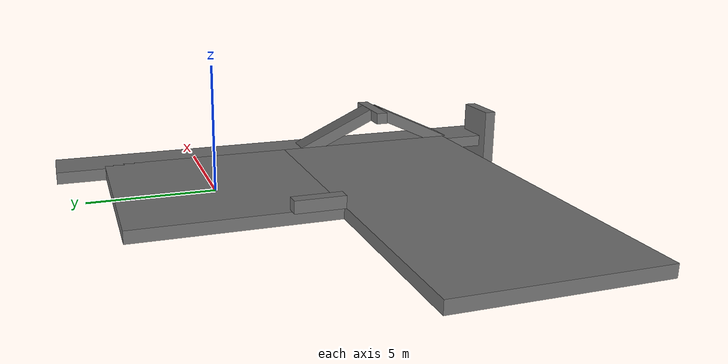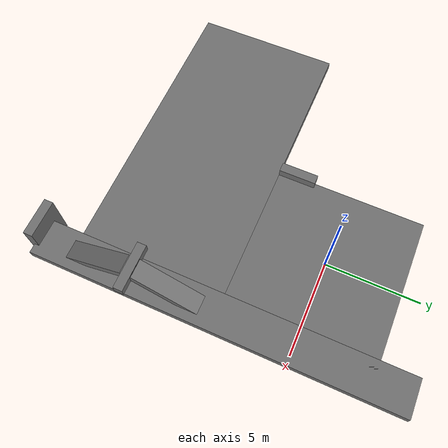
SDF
<sdf version="1.10">
 <world name="simple_test">
  <physics name="ode_cpu" type="ode">
   <max_step_size>0.002</max_step_size>
   <real_time_update_rate>500</real_time_update_rate>
   <real_time_factor>1.0</real_time_factor>
   <ode>
    <solver><type>quick</type><iters>50</iters><sor>1.3</sor></solver>
    <constraints><cfm>0.0</cfm><erp>0.2</erp></constraints>
   </ode>
  </physics>
  <plugin name="gz::sim::systems::Physics" filename="gz-sim-physics-system"/>
  <plugin name="gz::sim::systems::UserCommands" filename="gz-sim-user-commands-system"/>
  <plugin name="gz::sim::systems::SceneBroadcaster" filename="gz-sim-scene-broadcaster-system"/>
  <plugin name="gz::sim::systems::Contact" filename="gz-sim-contact-system"/>
  <gravity>0 0 -9.81</gravity>
  <magnetic_field>5.5644999999999998e-06 2.2875799999999999e-05 -4.2388400000000002e-05</magnetic_field>
  <atmosphere type="adiabatic"/>
  <scene><ambient>0.5 0.5 0.5 1</ambient><background>0.7 0.7 0.75 1</background><shadows>true</shadows></scene>
  <model name="platform">
   <static>true</static>
   <link name="link_platform">
    <collision name="col"><geometry><box><size>8 8 .5</size></box></geometry></collision>
    <visual name="vis">
     <geometry><box><size>8 8 .5</size></box></geometry>
     <material>
      <ambient>0.35 0.35 0.35 1</ambient>
      <diffuse>0.45 0.45 0.45 1</diffuse>
      <pbr>
       <metal>
        <albedo_map>model://textures/wood_textures/wood_texture_seamless_1x5.jpg</albedo_map>
        <roughness>0.9</roughness>
        <metalness>0.0</metalness>
       </metal>
      </pbr>
     </material>
    </visual>
   </link>
  </model>
  <model name="driving platform">
   <static>true</static>
   <link name="link_base_driving_platform">
    <pose>-4 -8 0 0 0 0</pose>
    <collision name="col"><geometry><box><size>16 8 .5</size></box></geometry></collision>
    <visual name="vis">
     <geometry><box><size>16 8 .5</size></box></geometry>
     <material>
      <ambient>0.35 0.35 0.35 1</ambient>
      <diffuse>0.45 0.45 0.45 1</diffuse>
      <pbr>
       <metal>
        <albedo_map>model://textures/wood_textures/wood_texture_seamless_1x5.jpg</albedo_map>
        <roughness>0.9</roughness>
        <metalness>0.0</metalness>
       </metal>
      </pbr>
     </material>
    </visual>
   </link>
   <link name="link_driving_marker">
    <pose>-4 -3 .5 0 0 0</pose>
    <collision name="col"><geometry><box><size>.5 2 .5</size></box></geometry></collision>
    <visual name="vis">
     <geometry><box><size>.5 2 .5</size></box></geometry>
     <material>
      <ambient>0.35 0.35 0.35 1</ambient>
      <diffuse>0.45 0.45 0.45 1</diffuse>
      <pbr>
       <metal>
        <albedo_map>model://textures/stone_textures/stone_wall_seamless_2x1.jpg</albedo_map>
        <roughness>0.9</roughness>
        <metalness>0.0</metalness>
       </metal>
      </pbr>
     </material>
    </visual>
   </link>
  </model>
  <model name="roll_ramp">
   <static>true</static>
   <link name="link_up_ramp">
    <pose>4.5 -6.5 .75 -0.436 0 0</pose>
    <collision name="col"><geometry><box><size>1 4 .5</size></box></geometry></collision>
    <visual name="vis">
     <geometry><box><size>1 4 .5</size></box></geometry>
     <material>
      <ambient>0.35 0.35 0.35 1</ambient>
      <diffuse>0.45 0.45 0.45 1</diffuse>
      <pbr>
       <metal>
        <albedo_map>model://textures/stone_textures/stone_wall_seamless_2x1.jpg</albedo_map>
        <roughness>0.9</roughness>
        <metalness>0.0</metalness>
       </metal>
      </pbr>
     </material>
    </visual>
   </link>
   <link name="link_wait_platform">
    <pose>4.5 -8.5 1.55 0 0 0</pose>
    <collision name="col"><geometry><box><size>3 .5 .5</size></box></geometry></collision>
    <visual name="vis">
     <geometry><box><size>2.5 .5 .5</size></box></geometry>
     <material>
      <ambient>0.35 0.35 0.35 1</ambient>
      <diffuse>0.45 0.45 0.45 1</diffuse>
      <pbr>
       <metal>
        <albedo_map>model://textures/wood_textures/wood_texture_seamless_1x5.jpg</albedo_map>
        <roughness>0.9</roughness>
        <metalness>0.0</metalness>
       </metal>
      </pbr>
     </material>
    </visual>
   </link>
   <link name="link_down_ramp">
    <pose>4.5 -10.5 .75 -0.436 0 3.141</pose>
    <collision name="col"><geometry><box><size>1 4 .5</size></box></geometry></collision>
    <visual name="vis">
     <geometry><box><size>1 4 .5</size></box></geometry>
     <material>
      <ambient>0.35 0.35 0.35 1</ambient>
      <diffuse>0.45 0.45 0.45 1</diffuse>
      <pbr>
       <metal>
        <albedo_map>model://textures/stone_textures/stone_wall_seamless_2x1.jpg</albedo_map>
        <roughness>0.9</roughness>
        <metalness>0.0</metalness>
       </metal>
      </pbr>
     </material>
    </visual>
   </link>
   <link name="link_roll_off_platform">
    <pose>4.5 -4 0 0 0 0</pose>
    <collision name="col"><geometry><box><size>2 20 .5</size></box></geometry></collision>
    <visual name="vis">
     <geometry><box><size>2 20 .5</size></box></geometry>
     <material>
      <ambient>0.35 0.35 0.35 1</ambient>
      <diffuse>0.45 0.45 0.45 1</diffuse>
      <pbr>
       <metal>
        <albedo_map>model://textures/wood_textures/wood_texture_seamless_1x5.jpg</albedo_map>
        <roughness>0.9</roughness>
        <metalness>0.0</metalness>
       </metal>
      </pbr>
     </material>
    </visual>
   </link>
   <link name="link_wall_stopper_hit">
    <pose>4 -14 0 1.571 0 0</pose>
    <collision name="col"><geometry><box><size>2 3 .5</size></box></geometry></collision>
    <visual name="vis">
     <geometry><box><size>2 3 .5</size></box></geometry>
     <material>
      <ambient>0.35 0.35 0.35 1</ambient>
      <diffuse>0.45 0.45 0.45 1</diffuse>
      <pbr>
       <metal>
        <albedo_map>model://textures/wood_textures/wood_texture_seamless_1x5.jpg</albedo_map>
        <roughness>0.9</roughness>
        <metalness>0.0</metalness>
       </metal>
      </pbr>
     </material>
    </visual>
   </link>
  </model>
  <light name="sun" type="directional">
   <pose>0 0 10 0 0 0</pose>
   <intensity>1</intensity>
   <direction>-0.5 0.10000000000000001 -0.90000000000000002</direction>
   <diffuse>0.800000012 0.800000012 0.800000012 1</diffuse>
   <specular>0.200000003 0.200000003 0.200000003 1</specular>
   <attenuation>
    <range>1000</range>
    <linear>0.01</linear>
    <constant>0.90000000000000002</constant>
    <quadratic>0.001</quadratic>
   </attenuation>
   <spot><inner_angle>0</inner_angle><outer_angle>0</outer_angle><falloff>0</falloff></spot>
  </light>
 </world>
</sdf>
